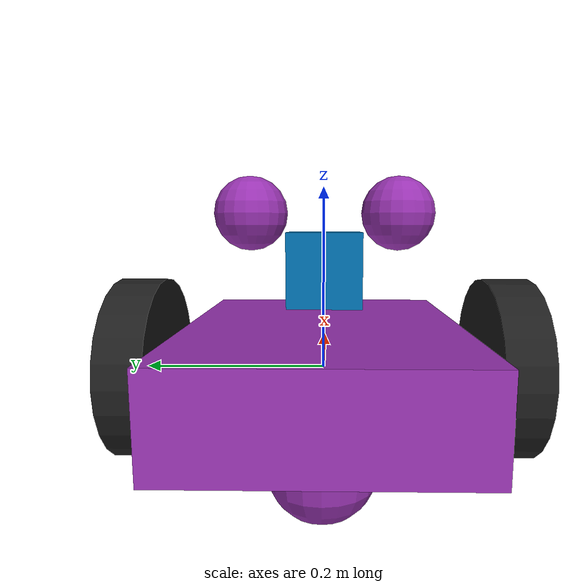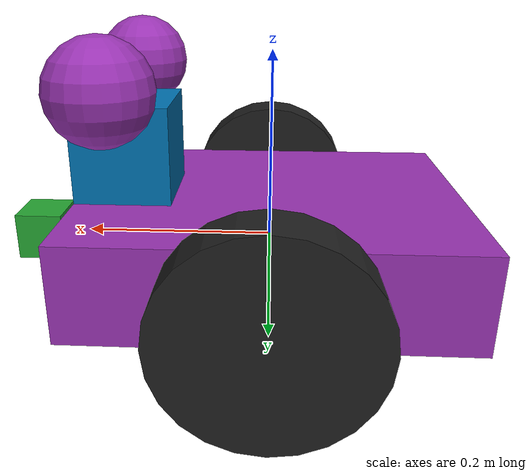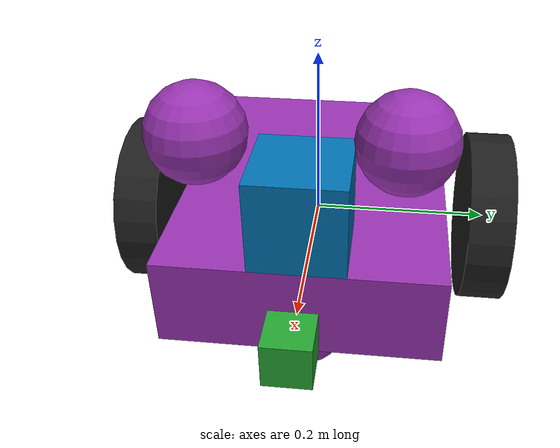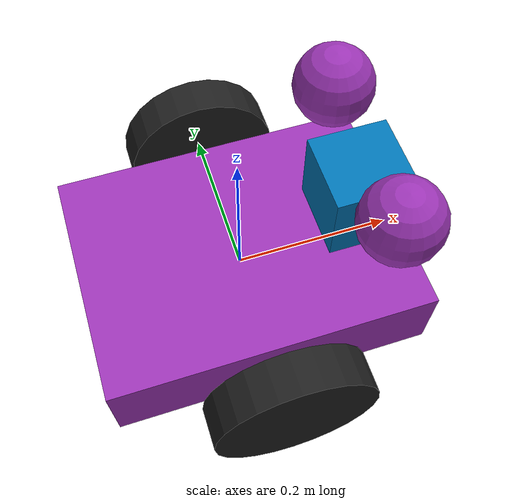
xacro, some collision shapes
<?xml version='1.0'?>

<robot name="my_robot" xmlns:xacro="http://www.ros.org/wiki/xacro">

  <xacro:include filename="$(find my_robot)/urdf/mapping_robot.gazebo" />

  <link name="robot_footprint"></link>

  <joint name="robot_footprint_joint" type="fixed">
    <origin xyz="0 0 0" rpy="0 0 0" />
    <parent link="robot_footprint"/>
    <child link="chassis" />
  </joint>

  <link name='chassis'>
    <pose>0 0 0.1 0 0 0</pose>

    <inertial>
      <mass value="12.0"/>
      <origin xyz="0.0 0 0.0" rpy=" 0 0 0"/>
      <inertia
          ixx="0.1" ixy="0" ixz="0"
          iyy="0.1" iyz="0"
          izz="0.1"
      />
    </inertial>

    <collision name='collision'>
      <origin xyz="0 0 0.0" rpy=" 0 0 0"/>
      <geometry>
        <box size=".4 .3 .1"/>
      </geometry>
    </collision>

    <visual name='chassis_visual'>
      <origin xyz="0 0 0.0" rpy=" 0 0 0"/>
      <geometry>
        <box size=".4 .3 .1"/>
      </geometry>
    </visual>

    <collision name='back_caster_collision'>
      <origin xyz="-0.15 0 -0.05" rpy=" 0 0 0"/>
      <geometry>
        <sphere radius="0.0499"/>
      </geometry>
    </collision>

    <visual name='back_caster_visual'>
      <origin xyz="-0.15 0 -0.05" rpy=" 0 0 0"/>
      <geometry>
        <sphere radius="0.05"/>
      </geometry>
    </visual>

    <collision name='front_caster_collision'>
      <origin xyz="0.15 0 -0.05" rpy=" 0 0 0"/>
      <geometry>
        <sphere radius="0.0499"/>
      </geometry>
    </collision>

    <visual name='front_caster_visual'>
      <origin xyz="0.15 0 -0.05" rpy=" 0 0 0"/>
      <geometry>
        <sphere radius="0.05"/>
      </geometry>
    </visual>
    <visual name='left_eye_visual'>
      <origin xyz="0.15 0.1 0.175" rpy=" 0 0 0"/>
      <geometry>
        <sphere radius="0.05"/>
      </geometry>
    </visual>
    <visual name='right_eye_visual'>
      <origin xyz="0.15 -0.1 0.175" rpy=" 0 0 0"/>
      <geometry>
        <sphere radius="0.05"/>
      </geometry>
    </visual>

  </link>

  <link name='left_wheel'>

    <inertial>
      <mass value="2.0"/>
      <origin xyz="0.0 0 0.0" rpy="0 1.5707 1.5707"/>
      <inertia
          ixx="0.1" ixy="0" ixz="0"
          iyy="0.1" iyz="0"
          izz="0.1"
      />
    </inertial>

    <collision name='collision'>
      <origin xyz="0 0 0.0" rpy="0 1.5707 1.5707"/>
      <geometry>
        <cylinder radius="0.1" length="0.05"/>
      </geometry>
    </collision>

    <visual name='left_wheelvisual'>
      <origin xyz="0 0 0.0" rpy="0 1.5707 1.5707"/>
      <geometry>
        <cylinder radius="0.1" length="0.05"/>
      </geometry>
    </visual>

  </link>

  <link name='right_wheel'>

    <inertial>
      <mass value="2.0"/>
      <origin xyz="0.0 0 0.0" rpy="0 1.5707 1.5707"/>
      <inertia
          ixx="0.1" ixy="0" ixz="0"
          iyy="0.1" iyz="0"
          izz="0.1"
      />
    </inertial>

    <collision name='collision'>
      <origin xyz="0 0 0.0" rpy="0 1.5707 1.5707"/>
      <geometry>
        <cylinder radius="0.1" length="0.05"/>
      </geometry>
    </collision>

    <visual name='right_wheel_visual'>
      <origin xyz="0 0 0.0" rpy="0 1.5707 1.5707"/>
      <geometry>
        <cylinder radius="0.1" length="0.05"/>
      </geometry>
    </visual>

  </link>

  <link name='hokuyo'>
    <origin xyz="0 0 0" rpy="0 0 0"/>
    <inertial>
      <mass value="1e-5"/>
      <origin xyz="0.05 0.05 0.05"/>
      <inertia
          ixx="1e-6" ixy="0" ixz="0"
          iyy="1e-6" iyz="0"
          izz="1e-6"
      />
    </inertial>
    <collision name='collision'>
      <origin xyz="0.0 0.0 0.0"/>
      <geometry>
        <box size=".1 .1 .1"/>
      </geometry>
    </collision>
    <visual name='visual'>
      <origin xyz="0.0 0.0 0.0"/>
      <geometry>
        <mesh filename="package://my_robot/meshes/hokuyo.dae"/>
      </geometry>
    </visual>
  </link>

  <link name='camera'>
    <origin xyz="0 0 0" rpy="0 0 0"/>
    <inertial>
      <mass value="1e-5"/>
      <origin xyz="0.05 0.05 0.05"/>
      <inertia
          ixx="1e-6" ixy="0" ixz="0"
          iyy="1e-6" iyz="0"
          izz="1e-6"
      />
    </inertial>

    <collision name='collision'>
      <origin xyz="0.0 0.0 0.0"/>
      <geometry>
        <box size=".05 .05 .05"/>
      </geometry>
    </collision>
    <visual name='camera_visual'>
      <origin xyz="0.0 0.0 0.0"/>
      <geometry>
        <box size=".05 .05 .05"/>
      </geometry>
    </visual>
  </link>

  <joint name="camera_optical_joint" type="fixed">
    <origin xyz="0 0 0" rpy="-1.5707 0 -1.5707"/>
    <parent link="camera"/>
    <child link="camera_link_optical"/>
  </joint>

  <link name="camera_link_optical"/>

  <joint type="continuous" name="left_wheel_hinge">
    <origin xyz="0 0.2 0" rpy="0 0 0"/>
    <child link="left_wheel"/>
    <parent link="chassis"/>
    <axis xyz="0 1 0" rpy="0 0 0"/>
    <limit effort="10000" velocity="1000"/>
    <dynamics damping="1.0" friction="1.0"/>
  </joint>

  <joint type="continuous" name="right_wheel_hinge">
    <origin xyz="0 -0.2 0" rpy="0 0 0"/>
    <child link="right_wheel"/>
    <parent link="chassis"/>
    <axis xyz="0 1 0" rpy="0 0 0"/>
    <limit effort="10000" velocity="1000"/>
    <dynamics damping="1.0" friction="1.0"/>
  </joint>

  <joint type="fixed" name="camera_joint">
    <origin xyz="0.25 0 0" rpy="0 0 0"/>
    <axis xyz="0 1 0"/>
    <child link="camera"/>
    <parent link="chassis"/>
  </joint>

  <joint type="fixed" name="hokuyo_joint">
    <origin xyz="0.15 0 0.1" rpy="0 0 0"/>
    <axis xyz="0 1 0"/>
    <child link="hokuyo"/>
    <parent link="chassis"/>
  </joint>

  <gazebo reference="left_wheel">
    <material>Gazebo/Black</material>
	<mu1>0.3</mu1>
	<mu2>0.3</mu2>
	<minDepth>0.01</minDepth>
  </gazebo>
  <gazebo reference="right_wheel">
    <material>Gazebo/Black</material>
	<mu1>0.3</mu1>
	<mu2>0.3</mu2>
	<minDepth>0.01</minDepth>
  </gazebo>
  <gazebo reference="chassis">
    <mu1>0.0</mu1>
    <mu2>0.0</mu2>
    <material>Gazebo/Purple</material>
  </gazebo>
  <gazebo reference="camera">
    <material>Gazebo/Green</material>
  </gazebo>
</robot>
